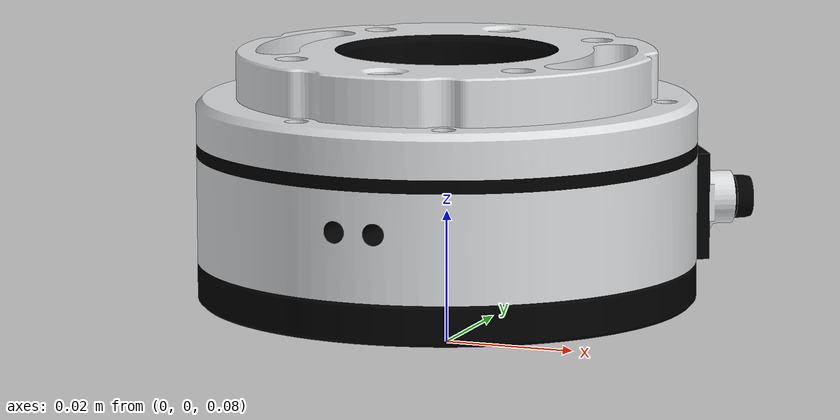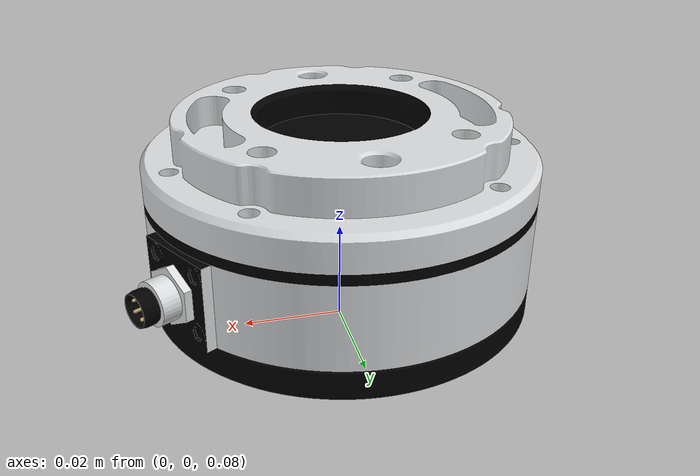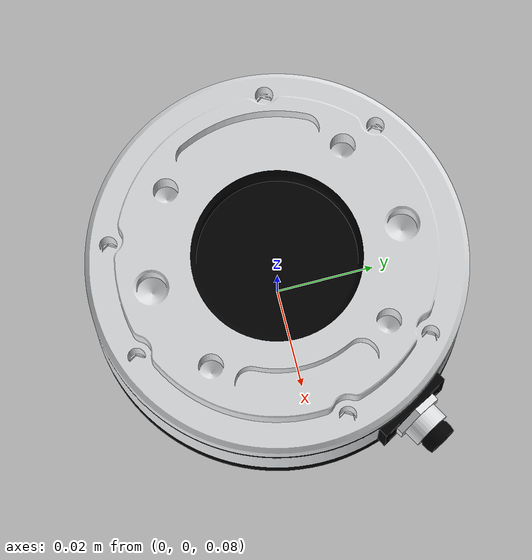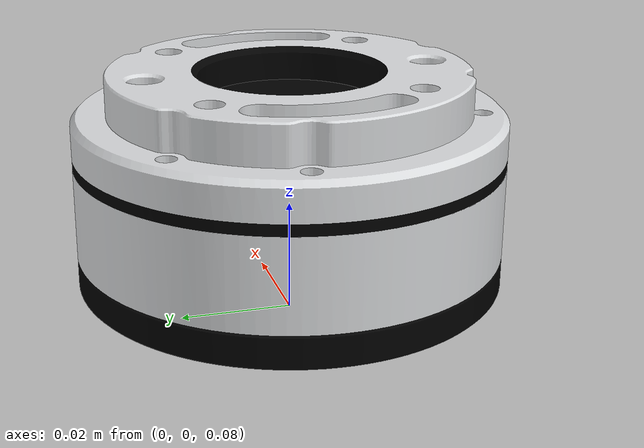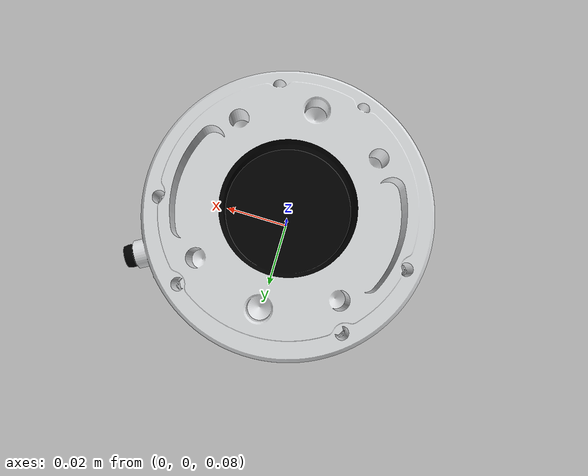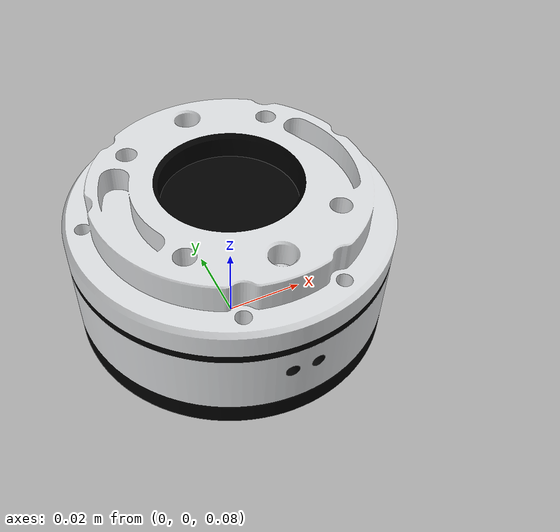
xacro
<?xml version="1.0"?>
<robot name="kwr75_force_sensor" xmlns:xacro="http://ros.org/wiki/xacro">

    <!-- parameters -->
    <xacro:arg name="prefix" default=""/>
    <xacro:arg name="com_port" default="/dev/ttyUSB0"/>
    <xacro:arg name="use_mock_hardware" default="false"/>
    <xacro:arg name="mock_sensor_commands" default="false"/>

    <!-- import main macro -->
    <xacro:include filename="$(find kwr75_force_sensor_ros2)/urdf/kwr75_macro.xacro" />
    <xacro:include filename="$(find kwr75_force_sensor_ros2)/urdf/kwr75.ros2_control.xacro" />

    <!-- gripper -->
    <xacro:kwr75_force_sensor
        prefix=""
        parent="world">
        <origin xyz="0 0 0.1" rpy="0 0 0" />
    </xacro:kwr75_force_sensor>

    <xacro:kwr75_force_sensor_ros2_control
        name="kwr75_force_sensor"
        prefix="$(arg prefix)"
        com_port="$(arg com_port)"
        use_mock_hardware="$(arg use_mock_hardware)"
        mock_sensor_commands="$(arg mock_sensor_commands)"
    />

    <link name="world" />

</robot>

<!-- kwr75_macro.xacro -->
<robot name="kwr75_macro" xmlns:xacro="http://www.ros.org/wiki/xacro">
  <xacro:macro name="kwr75_force_sensor"
    params="
    prefix
    parent
    *origin"
  >
    <link name="${prefix}kwr75_base_link">
      <inertial>
        <origin xyz="0.00016490924101778332 0.00015134704036161043 0.01805492934845781" rpy="0 0 0"/>
        <mass value="0.9095687374891032"/>
        <inertia ixx="0.000433" iyy="0.000433" izz="0.00067" ixy="-3e-06" iyz="1e-06" ixz="1e-06"/>
      </inertial>
      <visual>
        <origin xyz="0 0 0" rpy="${-pi/2} 0 0"/>
        <geometry>
          <mesh filename="package://kwr75_force_sensor_ros2/meshes/kwr75.dae" scale="0.001 0.001 0.001"/>
        </geometry>
      </visual>
      <collision>
        <origin xyz="0 0 0" rpy="0 0 0"/>
        <geometry>
          <mesh filename="package://kwr75_force_sensor_ros2/meshes/kwr75_collision.stl" scale="0.001 0.001 0.001"/>
        </geometry>
      </collision>
    </link>

    <link name="${prefix}fts_link"/>

    <joint name="${prefix}fts_joint" type="fixed">
      <parent link="${prefix}kwr75_base_link" />
      <child link="${prefix}fts_link" />
      <origin xyz="0 0 0.0375" rpy="0 0 0"/>
    </joint>

    <joint name="${prefix}kwr75_base_joint" type="fixed">
      <parent link="${parent}" />
      <child link="${prefix}kwr75_base_link" />
      <xacro:insert_block name="origin" />
    </joint>

  </xacro:macro>

</robot>
